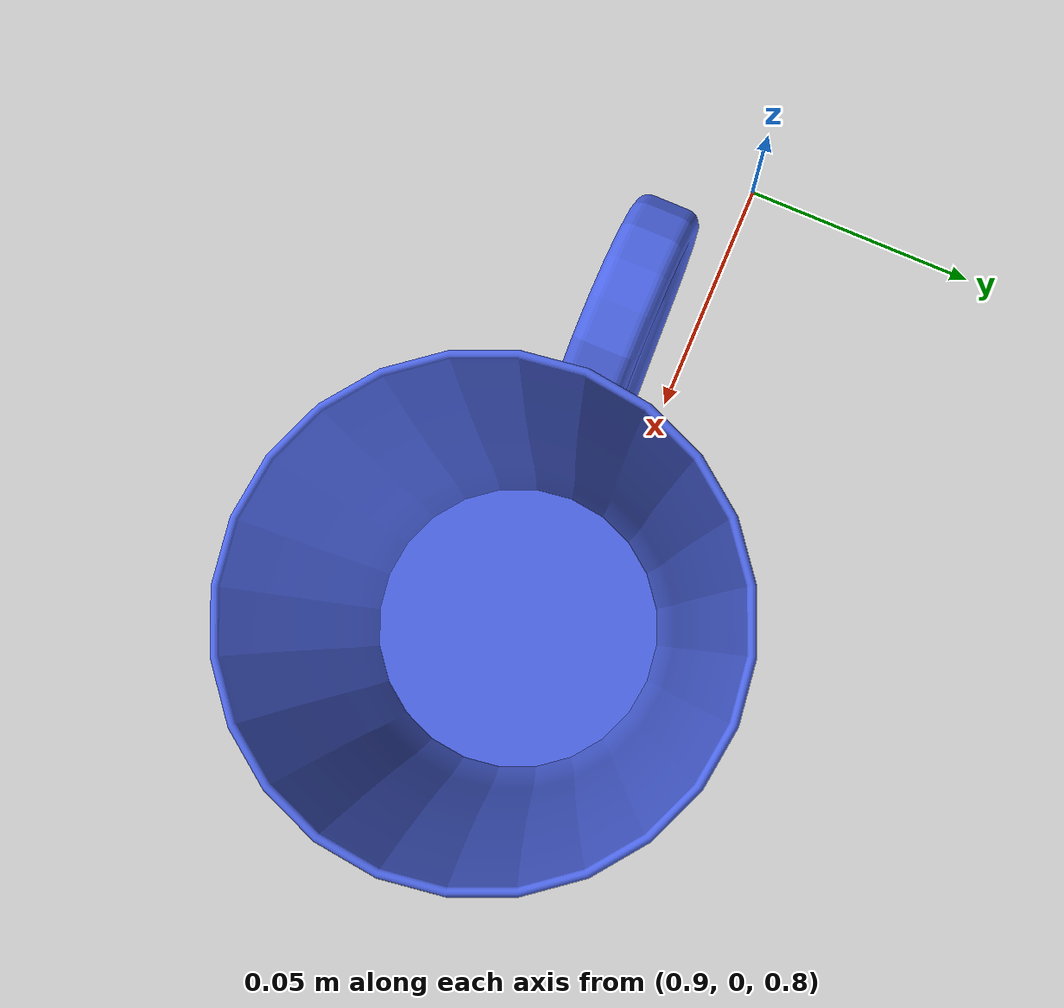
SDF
<?xml version="1.0" ?>
<sdf version="1.6">
  <world name="default">

    <include>
      <uri>model://ground_plane</uri>
    </include>

    <include>
      <uri>model://sun</uri>
    </include>

    <model name='cup_blue'>
      <pose>1.0 0.0 0.8 0 0 0</pose> <link name='link_13'>
        <inertial> <mass>0.1</mass>
          <inertia>
            <ixx>0.0001</ixx> <ixy>0</ixy> <ixz>0</ixz>
            <iyy>0.0001</iyy> <iyz>0</iyz> <izz>0.0001</izz>
          </inertia>
        </inertial>
        <visual name='visual'>
          <geometry>
            <mesh>
              <uri>model://cup_blue/meshes/cup1.dae</uri>
              <scale>1 1 1</scale>
            </mesh>
          </geometry>
          <material>
            <ambient>0.3 0.4 0.9 1</ambient>
            <diffuse>0.3 0.4 0.9 1</diffuse>
            <specular>0.1 0.1 0.1 1</specular>
          </material>
        </visual>
        <collision name='collision'>
          <geometry>
            <mesh>
              <uri>model://cup_blue/meshes/cup1.dae</uri>
              <scale>1 1 1</scale>
            </mesh>
          </geometry>
        </collision>
      </link>
      <static>0</static> </model>

    <physics type="ode">
      <real_time_update_rate>1000.0</real_time_update_rate>
      <max_step_size>0.001</max_step_size>
      <real_time_factor>1</real_time_factor>
    </physics>

  </world>
</sdf>
